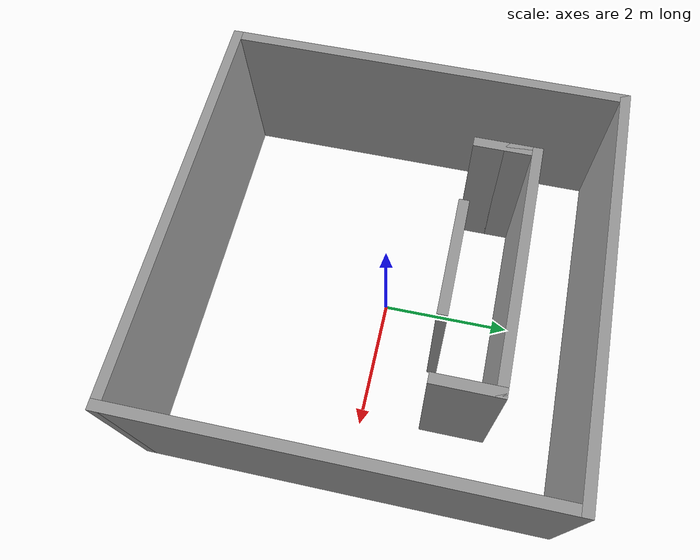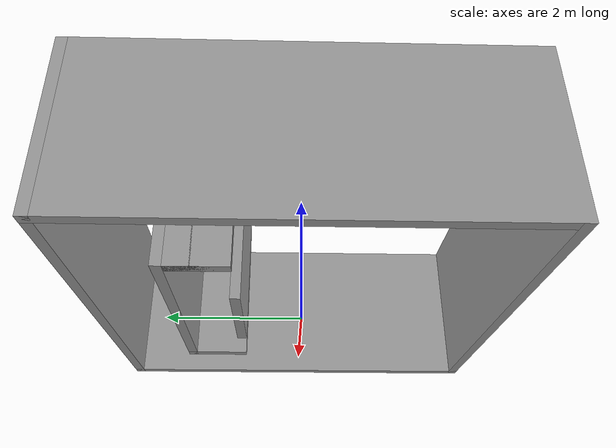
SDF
<?xml version='1.0'?>
<sdf version='1.6'>
  <model name='trainn_model'>
    <pose frame=''>0 0 0 0 -0 0</pose>
    <link name='Wall_13'>
      <collision name='Wall_13_Collision'>
        <geometry>
          <box>
            <size>6.15 0.15 2.5</size>
          </box>
        </geometry>
        <pose frame=''>0 0 1.25 0 -0 0</pose>
      </collision>
      <visual name='Wall_13_Visual'>
        <pose frame=''>0 0 1.25 0 -0 0</pose>
        <geometry>
          <box>
            <size>6.15 0.15 2.5</size>
          </box>
        </geometry>
        <material>
          <script>
            <uri>file://media/materials/scripts/gazebo.material</uri>
            <name>Gazebo/Grey</name>
          </script>
          <ambient>1 1 1 1</ambient>
        </material>
        <meta>
          <layer>0</layer>
        </meta>
      </visual>
      <pose frame=''>0 -3 0 0 -0 0</pose>
    </link>
    <link name='Wall_15'>
      <collision name='Wall_15_Collision'>
        <geometry>
          <box>
            <size>6.15 0.15 2.5</size>
          </box>
        </geometry>
        <pose frame=''>0 0 1.25 0 -0 0</pose>
      </collision>
      <visual name='Wall_15_Visual'>
        <pose frame=''>0 0 1.25 0 -0 0</pose>
        <geometry>
          <box>
            <size>6.15 0.15 2.5</size>
          </box>
        </geometry>
        <material>
          <script>
            <uri>file://media/materials/scripts/gazebo.material</uri>
            <name>Gazebo/Grey</name>
          </script>
          <ambient>1 1 1 1</ambient>
        </material>
        <meta>
          <layer>0</layer>
        </meta>
      </visual>
      <pose frame=''>0 3 0 0 -0 3.14159</pose>
    </link>
    <link name='Wall_23'>
      <collision name='Wall_23_Collision'>
        <geometry>
          <box>
            <size>6.15 0.15 2.5</size>
          </box>
        </geometry>
        <pose frame=''>0 0 1.25 0 -0 0</pose>
      </collision>
      <visual name='Wall_23_Visual'>
        <pose frame=''>0 0 1.25 0 -0 0</pose>
        <geometry>
          <box>
            <size>6.15 0.15 2.5</size>
          </box>
        </geometry>
        <material>
          <script>
            <uri>file://media/materials/scripts/gazebo.material</uri>
            <name>Gazebo/Grey</name>
          </script>
          <ambient>1 1 1 1</ambient>
        </material>
        <meta>
          <layer>0</layer>
        </meta>
      </visual>
      <pose frame=''>-3 0 0 0 -0 -1.5708</pose>
    </link>
    <link name='Wall_25'>
      <collision name='Wall_25_Collision'>
        <geometry>
          <box>
            <size>6.15 0.15 2.5</size>
          </box>
        </geometry>
        <pose frame=''>0 0 1.25 0 -0 0</pose>
      </collision>
      <visual name='Wall_25_Visual'>
        <pose frame=''>0 0 1.25 0 -0 0</pose>
        <geometry>
          <box>
            <size>6.15 0.15 2.5</size>
          </box>
        </geometry>
        <material>
          <script>
            <uri>file://media/materials/scripts/gazebo.material</uri>
            <name>Gazebo/Grey</name>
          </script>
          <ambient>1 1 1 1</ambient>
        </material>
        <meta>
          <layer>0</layer>
        </meta>
      </visual>
      <pose frame=''>3 0 0 0 -0 -1.5708</pose>
    </link>
    <link name='Wall_27'>
      <collision name='Wall_27_Collision'>
        <geometry>
          <box>
            <size>1 0.15 2.5</size>
          </box>
        </geometry>
        <pose frame=''>0 0 1.25 0 -0 0</pose>
      </collision>
      <visual name='Wall_27_Visual'>
        <pose frame=''>0 0 1.25 0 -0 0</pose>
        <geometry>
          <box>
            <size>1 0.15 2.5</size>
          </box>
        </geometry>
        <material>
          <script>
            <uri>file://media/materials/scripts/gazebo.material</uri>
            <name>Gazebo/Grey</name>
          </script>
          <ambient>1 1 1 1</ambient>
        </material>
        <meta>
          <layer>0</layer>
        </meta>
      </visual>
      <pose frame=''>-1.78538 1.41372 0 0 -0 -1.5708</pose>
    </link>
    <link name='Wall_28'>
      <collision name='Wall_28_Collision'>
        <geometry>
          <box>
            <size>1 0.15 2.5</size>
          </box>
        </geometry>
        <pose frame=''>0 0 1.25 0 -0 0</pose>
      </collision>
      <visual name='Wall_28_Visual'>
        <pose frame=''>0 0 1.25 0 -0 0</pose>
        <geometry>
          <box>
            <size>1 0.15 2.5</size>
          </box>
        </geometry>
        <material>
          <script>
            <uri>file://media/materials/scripts/gazebo.material</uri>
            <name>Gazebo/Grey</name>
          </script>
          <ambient>1 1 1 1</ambient>
        </material>
        <meta>
          <layer>0</layer>
        </meta>
      </visual>
      <pose frame=''>-1.78538 1.41372 0 0 -0 1.5708</pose>
    </link>
    <link name='Wall_29'>
      <collision name='Wall_29_Collision'>
        <geometry>
          <box>
            <size>3.75 0.15 2.5</size>
          </box>
        </geometry>
        <pose frame=''>0 0 1.25 0 -0 0</pose>
      </collision>
      <visual name='Wall_29_Visual'>
        <pose frame=''>0 0 1.25 0 -0 0</pose>
        <geometry>
          <box>
            <size>3.75 0.15 2.5</size>
          </box>
        </geometry>
        <material>
          <script>
            <uri>file://media/materials/scripts/gazebo.material</uri>
            <name>Gazebo/Grey</name>
          </script>
          <ambient>1 1 1 1</ambient>
        </material>
        <meta>
          <layer>0</layer>
        </meta>
      </visual>
      <pose frame=''>0.014615 1.83872 0 0 -0 0</pose>
    </link>
    <link name='Wall_30'>
      <collision name='Wall_30_Collision'>
        <geometry>
          <box>
            <size>1 0.15 2.5</size>
          </box>
        </geometry>
        <pose frame=''>0 0 1.25 0 -0 0</pose>
      </collision>
      <visual name='Wall_30_Visual'>
        <pose frame=''>0 0 1.25 0 -0 0</pose>
        <geometry>
          <box>
            <size>1 0.15 2.5</size>
          </box>
        </geometry>
        <material>
          <script>
            <uri>file://media/materials/scripts/gazebo.material</uri>
            <name>Gazebo/Grey</name>
          </script>
          <ambient>1 1 1 1</ambient>
        </material>
        <meta>
          <layer>0</layer>
        </meta>
      </visual>
      <pose frame=''>1.81462 1.41372 0 0 -0 -1.5708</pose>
    </link>
    <link name='Wall_32'>
      <collision name='Wall_32_Collision'>
        <geometry>
          <box>
            <size>1.75 0.15 2.5</size>
          </box>
        </geometry>
        <pose frame=''>0 0 1.25 0 -0 0</pose>
      </collision>
      <visual name='Wall_32_Visual'>
        <pose frame=''>0 0 1.25 0 -0 0</pose>
        <geometry>
          <box>
            <size>1.75 0.15 2.5</size>
          </box>
        </geometry>
        <material>
          <script>
            <uri>file://media/materials/scripts/gazebo.material</uri>
            <name>Gazebo/Grey</name>
          </script>
          <ambient>1 1 1 1</ambient>
        </material>
        <meta>
          <layer>0</layer>
        </meta>
      </visual>
      <pose frame=''>0.08584 0.939416 0 0 -0 0</pose>
    </link>
    <static>1</static>
  </model>
</sdf>
